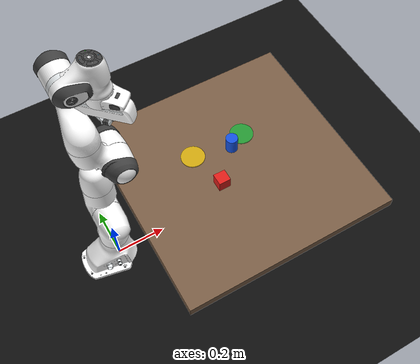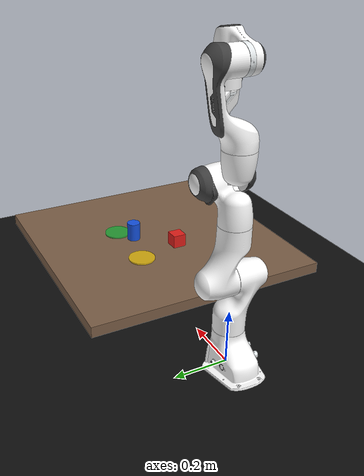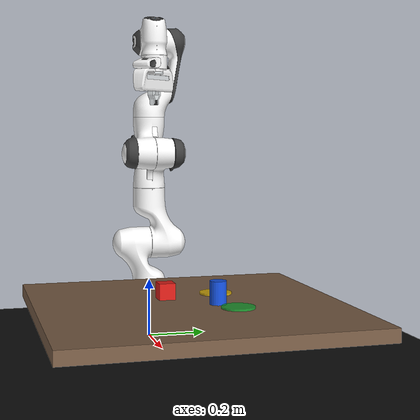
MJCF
<mujoco model="franka_panda_vla_pick_place">
  <include file="mjx_panda.xml"/>

  <option timestep="0.005" iterations="8" ls_iterations="12" integrator="implicitfast"/>

  <visual>
    <headlight diffuse="0.6 0.6 0.6" ambient="0.3 0.3 0.3" specular="0 0 0"/>
    <rgba haze="0.15 0.25 0.35 1"/>
    <global azimuth="135" elevation="-25"/>
  </visual>

  <asset>
    <texture type="skybox" builtin="gradient" rgb1="0.3 0.45 0.65" rgb2="0 0 0" width="512" height="3072"/>
    <texture type="2d" name="vla_table_checker" builtin="checker" mark="edge"
      rgb1="0.42 0.32 0.24" rgb2="0.54 0.42 0.31" markrgb="0.78 0.74 0.68" width="300" height="300"/>
    <material name="vla_floor_mat" rgba="0.055 0.055 0.055 1"/>
    <material name="vla_table_mat" texture="vla_table_checker" texuniform="true" texrepeat="2 2" reflectance="0.12"/>
    <material name="red_cube_mat" rgba="0.88 0.12 0.10 1"/>
    <material name="blue_cylinder_mat" rgba="0.08 0.32 0.88 1"/>
    <material name="green_plate_mat" rgba="0.08 0.72 0.22 0.75"/>
    <material name="yellow_plate_mat" rgba="0.95 0.78 0.05 0.8"/>
  </asset>

  <worldbody>
    <light name="vla_overhead" pos="0.25 -0.45 1.8" dir="0.1 0.25 -1" directional="true"/>
    <light name="vla_fill" pos="0.9 0.5 1.0" dir="-0.4 -0.2 -0.8" directional="true" diffuse="0.35 0.35 0.35"/>
    <camera name="overview" pos="1.2 -1.2 0.9" xyaxes="0.707 0.707 0 -0.35 0.35 0.866"/>
    <camera name="top_camera" pos="0.55 0 1.10" xyaxes="1 0 0 0 1 0" fovy="60"/>
    <camera name="side_camera" pos="0.55 -0.95 0.34" xyaxes="1 0 0 0 0 1" fovy="48"/>

    <geom name="floor" size="2 2 0.05" type="plane" material="vla_floor_mat"/>
    <geom name="table" type="box" pos="0.55 0 0.20" size="0.45 0.45 0.02" material="vla_table_mat"/>

    <body name="object" pos="0.46 -0.05 0.245">
      <freejoint name="object_free"/>
      <geom name="cube" type="box" size="0.025 0.025 0.025" material="red_cube_mat" mass="0.05"/>
    </body>

    <body name="blue_cylinder" pos="0.58 0.08 0.255">
      <freejoint name="blue_cylinder_free"/>
      <geom name="blue_cylinder_geom" type="cylinder" size="0.025 0.035"
        material="blue_cylinder_mat" mass="0.05"/>
    </body>

    <body name="target" mocap="true" pos="0.65 0.12 0.222">
      <geom name="target_zone" type="cylinder" size="0.050 0.004" material="green_plate_mat"
        contype="0" conaffinity="0"/>
    </body>

    <body name="yellow_target" mocap="true" pos="0.42 0.12 0.222">
      <geom name="yellow_target_zone" type="cylinder" size="0.050 0.004" material="yellow_plate_mat"
        contype="0" conaffinity="0"/>
    </body>
  </worldbody>
</mujoco>

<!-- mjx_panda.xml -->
<mujoco model="panda">
  <compiler angle="radian" meshdir="assets" autolimits="true"/>

  <default>
    <default class="panda">
      <material specular="0.5" shininess="0.25"/>
      <joint armature="0.1" damping="1" axis="0 0 1" range="-2.8973 2.8973"/>
      <general dyntype="none" biastype="affine" ctrlrange="-2.8973 2.8973" forcerange="-87 87"/>
      <position forcerange="-100 100"/>
      <default class="finger">
        <joint axis="0 1 0" type="slide" range="0 0.04"/>
      </default>

      <default class="visual">
        <geom type="mesh" contype="0" conaffinity="0" group="2"/>
      </default>
      <default class="collision">
        <geom group="3" type="mesh" contype="0" conaffinity="0"/>
        <default class="primitive_collision">
          <geom group="3" type="box" contype="0" conaffinity="0" condim="3" solimp="0.99 0.995 0.01" solref="0.01 1"
            friction="1 0.005 0.0001"/>
          <default class="fingertip_pad_collision_1">
            <geom type="box" size="0.011 0.0075 0.01" pos="0 0.0185 0.011"/>
          </default>
          <default class="fingertip_pad_collision_2">
            <geom type="box" size="0.011 0.0044 0.0019" pos="0 0.0068 0.0022"/>
          </default>
          <default class="fingertip_pad_collision_3">
            <geom type="box" size="0.00875 0.0035 0.01175" pos="0 0.0159 0.02835" quat="1 0.25 0 0"/>
          </default>
          <default class="fingertip_pad_collision_4">
            <geom type="box" size="0.00875 0.0076 0.00825" pos="0 0.00758 0.04525" contype="1" conaffinity="1"/>
          </default>
        </default>
      </default>
    </default>
  </default>

  <asset>
    <material class="panda" name="white" rgba="1 1 1 1"/>
    <material class="panda" name="off_white" rgba="0.901961 0.921569 0.929412 1"/>
    <material class="panda" name="black" rgba="0.25 0.25 0.25 1"/>
    <material class="panda" name="green" rgba="0 1 0 1"/>
    <material class="panda" name="light_blue" rgba="0.039216 0.541176 0.780392 1"/>

    <!-- Collision meshes -->
    <mesh name="link0_c" file="link0.stl"/>
    <mesh name="link1_c" file="link1.stl"/>
    <mesh name="link2_c" file="link2.stl"/>
    <mesh name="link3_c" file="link3.stl"/>
    <mesh name="link4_c" file="link4.stl"/>
    <mesh name="link5_c0" file="link5_collision_0.obj"/>
    <mesh name="link5_c1" file="link5_collision_1.obj"/>
    <mesh name="link5_c2" file="link5_collision_2.obj"/>
    <mesh name="link6_c" file="link6.stl"/>
    <mesh name="link7_c" file="link7.stl"/>
    <mesh name="hand_c" file="hand.stl"/>

    <!-- Visual meshes -->
    <mesh file="link0_0.obj"/>
    <mesh file="link0_1.obj"/>
    <mesh file="link0_2.obj"/>
    <mesh file="link0_3.obj"/>
    <mesh file="link0_4.obj"/>
    <mesh file="link0_5.obj"/>
    <mesh file="link0_7.obj"/>
    <mesh file="link0_8.obj"/>
    <mesh file="link0_9.obj"/>
    <mesh file="link0_10.obj"/>
    <mesh file="link0_11.obj"/>
    <mesh file="link1.obj"/>
    <mesh file="link2.obj"/>
    <mesh file="link3_0.obj"/>
    <mesh file="link3_1.obj"/>
    <mesh file="link3_2.obj"/>
    <mesh file="link3_3.obj"/>
    <mesh file="link4_0.obj"/>
    <mesh file="link4_1.obj"/>
    <mesh file="link4_2.obj"/>
    <mesh file="link4_3.obj"/>
    <mesh file="link5_0.obj"/>
    <mesh file="link5_1.obj"/>
    <mesh file="link5_2.obj"/>
    <mesh file="link6_0.obj"/>
    <mesh file="link6_1.obj"/>
    <mesh file="link6_2.obj"/>
    <mesh file="link6_3.obj"/>
    <mesh file="link6_4.obj"/>
    <mesh file="link6_5.obj"/>
    <mesh file="link6_6.obj"/>
    <mesh file="link6_7.obj"/>
    <mesh file="link6_8.obj"/>
    <mesh file="link6_9.obj"/>
    <mesh file="link6_10.obj"/>
    <mesh file="link6_11.obj"/>
    <mesh file="link6_12.obj"/>
    <mesh file="link6_13.obj"/>
    <mesh file="link6_14.obj"/>
    <mesh file="link6_15.obj"/>
    <mesh file="link6_16.obj"/>
    <mesh file="link7_0.obj"/>
    <mesh file="link7_1.obj"/>
    <mesh file="link7_2.obj"/>
    <mesh file="link7_3.obj"/>
    <mesh file="link7_4.obj"/>
    <mesh file="link7_5.obj"/>
    <mesh file="link7_6.obj"/>
    <mesh file="link7_7.obj"/>
    <mesh file="hand_0.obj"/>
    <mesh file="hand_1.obj"/>
    <mesh file="hand_2.obj"/>
    <mesh file="hand_3.obj"/>
    <mesh file="hand_4.obj"/>
    <mesh file="finger_0.obj"/>
    <mesh file="finger_1.obj"/>
  </asset>

  <worldbody>
    <light name="top" pos="0 0 2" mode="trackcom"/>
    <body name="link0" childclass="panda">
      <inertial mass="0.629769" pos="-0.041018 -0.00014 0.049974"
        fullinertia="0.00315 0.00388 0.004285 8.2904e-7 0.00015 8.2299e-6"/>
      <geom mesh="link0_0" material="off_white" class="visual"/>
      <geom mesh="link0_1" material="black" class="visual"/>
      <geom mesh="link0_2" material="off_white" class="visual"/>
      <geom mesh="link0_3" material="black" class="visual"/>
      <geom mesh="link0_4" material="off_white" class="visual"/>
      <geom mesh="link0_5" material="black" class="visual"/>
      <geom mesh="link0_7" material="white" class="visual"/>
      <geom mesh="link0_8" material="white" class="visual"/>
      <geom mesh="link0_9" material="black" class="visual"/>
      <geom mesh="link0_10" material="off_white" class="visual"/>
      <geom mesh="link0_11" material="white" class="visual"/>
      <geom mesh="link0_c" class="collision"/>
      <body name="link1" pos="0 0 0.333">
        <inertial mass="4.970684" pos="0.003875 0.002081 -0.04762"
          fullinertia="0.70337 0.70661 0.0091170 -0.00013900 0.0067720 0.019169"/>
        <joint name="joint1" damping="40"/>
        <geom material="white" mesh="link1" class="visual"/>
        <geom mesh="link1_c" class="collision"/>
        <body name="link2" quat="1 -1 0 0">
          <inertial mass="0.646926" pos="-0.003141 -0.02872 0.003495"
            fullinertia="0.0079620 2.8110e-2 2.5995e-2 -3.925e-3 1.0254e-2 7.04e-4"/>
          <joint name="joint2" range="-1.7628 1.7628" damping="40"/>
          <geom material="white" mesh="link2" class="visual"/>
          <geom mesh="link2_c" class="collision"/>
          <body name="link3" pos="0 -0.316 0" quat="1 1 0 0">
            <joint name="joint3" damping="40"/>
            <inertial mass="3.228604" pos="2.7518e-2 3.9252e-2 -6.6502e-2"
              fullinertia="3.7242e-2 3.6155e-2 1.083e-2 -4.761e-3 -1.1396e-2 -1.2805e-2"/>
            <geom mesh="link3_0" material="white" class="visual"/>
            <geom mesh="link3_1" material="white" class="visual"/>
            <geom mesh="link3_2" material="white" class="visual"/>
            <geom mesh="link3_3" material="black" class="visual"/>
            <geom mesh="link3_c" class="collision"/>
            <body name="link4" pos="0.0825 0 0" quat="1 1 0 0">
              <inertial mass="3.587895" pos="-5.317e-2 1.04419e-1 2.7454e-2"
                fullinertia="2.5853e-2 1.9552e-2 2.8323e-2 7.796e-3 -1.332e-3 8.641e-3"/>
              <joint name="joint4" range="-3.0718 -0.0698" damping="40"/>
              <geom mesh="link4_0" material="white" class="visual"/>
              <geom mesh="link4_1" material="white" class="visual"/>
              <geom mesh="link4_2" material="black" class="visual"/>
              <geom mesh="link4_3" material="white" class="visual"/>
              <geom mesh="link4_c" class="collision"/>
              <body name="link5" pos="-0.0825 0.384 0" quat="1 -1 0 0">
                <inertial mass="1.225946" pos="-1.1953e-2 4.1065e-2 -3.8437e-2"
                  fullinertia="3.5549e-2 2.9474e-2 8.627e-3 -2.117e-3 -4.037e-3 2.29e-4"/>
                <joint name="joint5" damping="2"/>
                <geom mesh="link5_0" material="black" class="visual"/>
                <geom mesh="link5_1" material="white" class="visual"/>
                <geom mesh="link5_2" material="white" class="visual"/>
                <geom mesh="link5_c0" class="collision"/>
                <geom mesh="link5_c1" class="collision"/>
                <geom mesh="link5_c2" class="collision"/>
                <body name="link6" quat="1 1 0 0">
                  <inertial mass="1.666555" pos="6.0149e-2 -1.4117e-2 -1.0517e-2"
                    fullinertia="1.964e-3 4.354e-3 5.433e-3 1.09e-4 -1.158e-3 3.41e-4"/>
                  <joint name="joint6" range="-0.0175 3.7525" damping="2"/>
                  <geom mesh="link6_0" material="off_white" class="visual"/>
                  <geom mesh="link6_1" material="white" class="visual"/>
                  <geom mesh="link6_2" material="black" class="visual"/>
                  <geom mesh="link6_3" material="white" class="visual"/>
                  <geom mesh="link6_4" material="white" class="visual"/>
                  <geom mesh="link6_5" material="white" class="visual"/>
                  <geom mesh="link6_6" material="white" class="visual"/>
                  <geom mesh="link6_7" material="light_blue" class="visual"/>
                  <geom mesh="link6_8" material="light_blue" class="visual"/>
                  <geom mesh="link6_9" material="black" class="visual"/>
                  <geom mesh="link6_10" material="black" class="visual"/>
                  <geom mesh="link6_11" material="white" class="visual"/>
                  <geom mesh="link6_12" material="green" class="visual"/>
                  <geom mesh="link6_13" material="white" class="visual"/>
                  <geom mesh="link6_14" material="black" class="visual"/>
                  <geom mesh="link6_15" material="black" class="visual"/>
                  <geom mesh="link6_16" material="white" class="visual"/>
                  <geom mesh="link6_c" class="collision"/>
                  <body name="link7" pos="0.088 0 0" quat="1 1 0 0">
                    <inertial mass="7.35522e-01" pos="1.0517e-2 -4.252e-3 6.1597e-2"
                      fullinertia="1.2516e-2 1.0027e-2 4.815e-3 -4.28e-4 -1.196e-3 -7.41e-4"/>
                    <joint name="joint7" damping="2"/>
                    <geom mesh="link7_0" material="white" class="visual"/>
                    <geom mesh="link7_1" material="black" class="visual"/>
                    <geom mesh="link7_2" material="black" class="visual"/>
                    <geom mesh="link7_3" material="black" class="visual"/>
                    <geom mesh="link7_4" material="black" class="visual"/>
                    <geom mesh="link7_5" material="black" class="visual"/>
                    <geom mesh="link7_6" material="black" class="visual"/>
                    <geom mesh="link7_7" material="white" class="visual"/>
                    <geom mesh="link7_c" class="collision"/>
                    <body name="hand" pos="0 0 0.107" quat="0.9238795 0 0 -0.3826834">
                      <inertial mass="0.73" pos="-0.01 0 0.03" diaginertia="0.001 0.0025 0.0017"/>
                      <geom mesh="hand_0" material="off_white" class="visual"/>
                      <geom mesh="hand_1" material="black" class="visual"/>
                      <geom mesh="hand_2" material="black" class="visual"/>
                      <geom mesh="hand_3" material="white" class="visual"/>
                      <geom mesh="hand_4" material="off_white" class="visual"/>
                      <geom mesh="hand_c" class="collision"/>
                      <geom name="hand_capsule" type="capsule" class="collision" conaffinity="1" size="0.04 0.06"
                        quat="1 1 0 0" pos="0 0 0.03"/>
                      <site name="gripper" pos="0 0 0.1"/>
                      <camera name="wrist_camera" pos="0.10 0 0.03" xyaxes="0 1 0 0.573 0 0.819" fovy="70"/>
                      <body name="left_finger" pos="0 0 0.0584">
                        <inertial mass="0.015" pos="0 0 0" diaginertia="2.375e-6 2.375e-6 7.5e-7"/>
                        <joint name="finger_joint1" class="finger" damping="10"/>
                        <geom mesh="finger_0" material="off_white" class="visual"/>
                        <geom mesh="finger_1" material="black" class="visual"/>
                        <geom mesh="finger_0" class="collision"/>
                        <geom class="fingertip_pad_collision_1"/>
                        <geom class="fingertip_pad_collision_2"/>
                        <geom class="fingertip_pad_collision_3"/>
                        <geom name="left_finger_pad" class="fingertip_pad_collision_4"/>
                      </body>
                      <body name="right_finger" pos="0 0 0.0584" quat="0 0 0 1">
                        <inertial mass="0.015" pos="0 0 0" diaginertia="2.375e-6 2.375e-6 7.5e-7"/>
                        <joint name="finger_joint2" class="finger" damping="10"/>
                        <geom mesh="finger_0" material="off_white" class="visual"/>
                        <geom mesh="finger_1" material="black" class="visual"/>
                        <geom mesh="finger_0" class="collision"/>
                        <geom class="fingertip_pad_collision_1"/>
                        <geom class="fingertip_pad_collision_2"/>
                        <geom class="fingertip_pad_collision_3"/>
                        <geom name="right_finger_pad" class="fingertip_pad_collision_4"/>
                      </body>
                    </body>
                  </body>
                </body>
              </body>
            </body>
          </body>
        </body>
      </body>
    </body>
  </worldbody>

  <equality>
    <joint joint1="finger_joint1" joint2="finger_joint2" solimp="0.95 0.99 0.001" solref="0.005 1"/>
  </equality>

  <actuator>
    <position class="panda" name="actuator1" joint="joint1" kp="1000" kv="20" ctrlrange="-2.8973 2.8973"/>
    <position class="panda" name="actuator2" joint="joint2" kp="1000" kv="20" ctrlrange="-1.7628 1.7628"/>
    <position class="panda" name="actuator3" joint="joint3" kp="750" kv="4" ctrlrange="-2.8973 2.8973"/>
    <position class="panda" name="actuator4" joint="joint4" kp="750" kv="4" ctrlrange="-3.0718 -0.0698"/>
    <position class="panda" name="actuator5" joint="joint5" kp="300" kv="2" forcerange="-12 12"
      ctrlrange="-2.8973 2.8973"/>
    <position class="panda" name="actuator6" joint="joint6" kp="300" kv="2" forcerange="-12 12"
      ctrlrange="-0.0175 3.7525"/>
    <position class="panda" name="actuator7" joint="joint7" kp="300" kv="2" forcerange="-12 12"/>
    <general class="panda" name="actuator8" joint="finger_joint1" ctrlrange="0 0.04" gainprm="350 0 0"
      biasprm="0 -350 -10" forcerange="-200 200"/>
  </actuator>

  <contact>
    <exclude body1="link0" body2="link1"/>
  </contact>
</mujoco>
